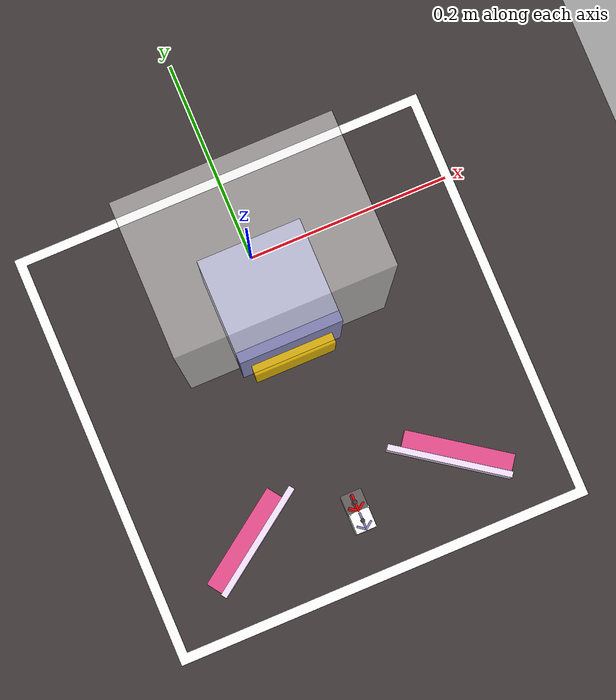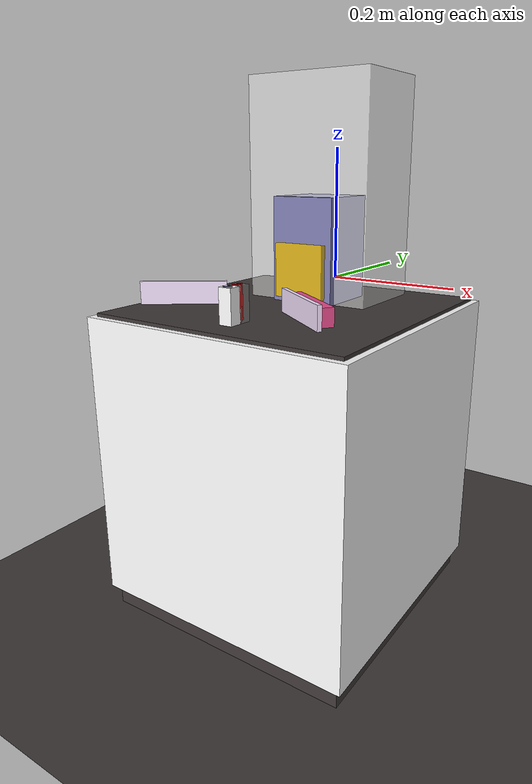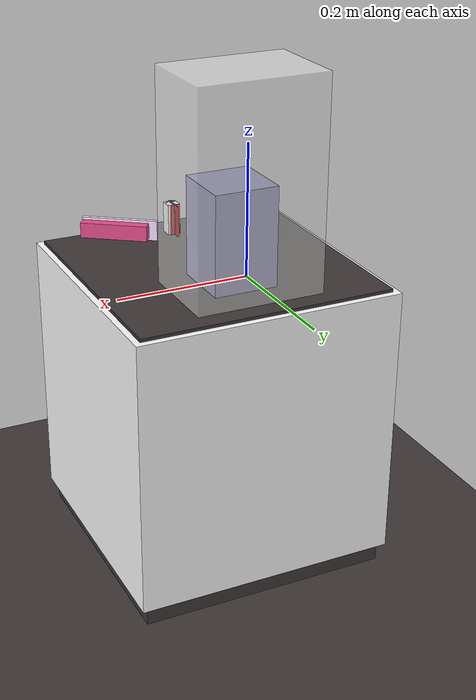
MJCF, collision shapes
<?xml version="1.0" encoding="utf-8"?>
<mujoco>

    <compiler angle="radian"
        meshdir="./simple_assets"
        balanceinertia="true"
        discardvisual="false"
        autolimits="true"></compiler>
    <option solver="PGS" impratio="0.5" cone="elliptic" tolerance="1e-7" noslip_iterations="10000">
        <flag warmstart="enable"></flag>
    </option>

    <include file="shared.xml"></include>

    <worldbody>
        <geom name="floor" type="plane" pos="0 0 -0.5" rgba="0.25 0.22 0.22 1" size="2 2 0.125" friction="0" group="2"></geom>
        <body name="floor" pos="0 0 -0.5"></body>
        <geom name="table" type="box" size=".2 .2 0.25" pos="0 -0.12 -0.275" contype="6" conaffinity="5" group="2" density="0" rgba="0.25 0.22 0.22 1" solimp="0.95 0.99 0.001" solref="0.00001 1" friction = "0.01" priority="1"></geom>
        <geom name="tableWhite" type="box" size=".21 .21 0.22" pos="0 -0.12 -0.25" rgba="1.5 1.5 1.5 0.9" group="2"></geom>
        <geom name="case" type="box" size="0.1 0.07 0.2" pos="0 -0.02 0.1" contype="0" conaffinity="0" group="2" density="0" rgba="2.56 2.56 2.56 0.5" mass="1"></geom>

        <include file="gripper.xml"></include>
        <include file="cube_1cm.xml"></include>

        <light directional="true" diffuse="0.3 0.3 0.3" specular="0.3 0.3 0.3" castshadow="true" pos="0.1 0.1 0.1" dir="0.2 0.1 -0.1" ></light>
    </worldbody>
</mujoco>

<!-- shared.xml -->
<mujoco>
    <size njmax="500" nconmax="100" nuser_jnt="1" nuser_site="1" nuser_sensor="1" nuser_actuator="5" nstack="600000"></size>

    <visual>
        <map fogstart="3" fogend="5" force="0.1"></map>
        <quality shadowsize="4096"></quality>
    </visual>

    <asset>
        <mesh name="base_link" file="base_link.STL"/>
        <mesh name="left_finger" file="left_finger.STL"/>
        <mesh name="left_insert" file="left_insert.STL"/>
        <mesh name="right_finger" file="right_finger.STL"/>
        <mesh name="right_insert" file="right_insert.STL"/>
        <mesh name="octagon" file="octagon.STL" scale="0.001 0.001 0.001"/>
    </asset>

    <contact>
        <exclude body1="base_link" body2="left_finger"></exclude>
        <exclude body1="base_link" body2="right_finger"></exclude>
        <exclude body1="left_finger" body2="left_insert"></exclude>
        <exclude body1="right_finger" body2="right_insert"></exclude>
    </contact>

    <default>
        <default class="visual">
            <geom type="mesh" solref=".004 1" contype="0" conaffinity="0" group="0"></geom>
        </default>
        <default class="collision">
            <geom type="mesh" group="1"></geom>
            <default class="left_insert_box">
                <geom mass="0" type="box" pos="0.012 -0.051365 0.0113936" size="0.0121 0.053 0.010375" friction="0.1" solimp="0.95 0.99 0.001" solref="0.004 1" priority="1" rgba="0.9 0.3 0.55 1" contype="1" conaffinity="2"></geom>
            </default>
            <default class="right_insert_box">
                <geom mass="0" type="box" pos="0.012 -0.051365 -0.0113936" size="0.0121 0.053 0.010375" friction="0.1" solimp="0.95 0.99 0.001" solref="0.004 1" priority="1" rgba="0.9 0.3 0.55 1" contype="1" conaffinity="2"></geom>
            </default>
            <default class="left_finger_box">
                <geom type="box" size = "0.016 0.06 0.003" contype="4" conaffinity="2" group="0" density="0" rgba="0.96 0.89 1.07 0.7" solimp="0.95 0.99 0.001" solref="0.00001 1" friction = "1" pos="-0.00218 0.087 0.019" priority="1"></geom>
            </default>
            <default class="right_finger_box">
                <geom type="box" size = "0.016 0.06 0.003" contype="4" conaffinity="2" group="0" density="0" rgba="0.96 0.89 1.07 0.7" solimp="0.95 0.99 0.001" solref="0.00001 1" friction = "1" pos="-0.00218 0.087 -0.019" priority="1"></geom>
            </default>
            <default class="object">
                <geom condim="4" contype="6" conaffinity="5" group="1" friction="0.5" priority="1" solimp="0.95 0.99 0.001" solref="0.00001 1"></geom>
            </default>
        </default>
        <default class="xm430Position">
            <joint damping="4.99979599" armature="0.39951026" frictionloss="0.03"/>
<!--            Iter:26, accepted:True, prms:[ 8.42506598  1.53619032 30.          0.1425522 ], loss:42910.40454254485
Multiple Trajectories-->
        </default>
        <default class="xm430Torque">
            <joint damping="5.67185526e-02" armature="3.55878361e-03" frictionloss="4.86429385e-07"/>
            <!--minimum loss:     370.75205951925, 0.3 torque-->
        </default>
        <default class="xl320">
            <joint damping="100000" armature="0.045" frictionloss="1" stiffness="0"/>
<!--        springdamper="100 1" damping="10000" armature="0.045" frictionloss="1" stiffness="0"    -->
        </default>
    </default>

    <sensor>
        <jointpos name="joint:p_left" joint="joint:left"></jointpos>
        <jointpos name="joint:p_right" joint="joint:right"></jointpos>
        <jointpos name="joint:p_leftInsert" joint="joint:leftInsert"></jointpos>
        <jointpos name="joint:p_rightInsert" joint="joint:rightInsert"></jointpos>
        <jointpos name="joint:p_stand" joint="joint:stand"></jointpos>
    </sensor>

<!--    Torque: [3.98617919, 0.63838835, 0.]-->
<!--    Position: [4.99979599, 0.39951026, 12.87708353, 0.03]-->

    <actuator>
        <position name="joint:A_left" joint="joint:left" ctrlrange="0 1.8807" kp="30" forcerange="-5 5" gear="1"></position>
        <motor name="joint:AT_right" joint="joint:right" ctrlrange="0 1" forcerange="-5 5"></motor>
        <position name="joint:A_leftInsert" joint="joint:leftInsert" ctrlrange="0 0.34" gear="100" kp="20"></position>
        <position name="joint:A_rightInsert" joint="joint:rightInsert" ctrlrange="0 0.34" gear="100" kp="20"></position>
        <position name="joint:A_stand" joint="joint:stand" ctrlrange="0 3" kp="10"></position>
    </actuator>
</mujoco>

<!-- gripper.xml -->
<mujoco>
    <body name="stand" pos="0 -0.02 0">
        <geom type="box" contype="0" pos="0 -0.03 -0.02" size="0.05 0.05 0.15" conaffinity="0" group="2" density="0" rgba="0.5 0.5 0.7 1" mass="1"></geom>
        <geom type="box" contype="0" pos="0 -0.04 0.023" size="0.04 0.05 0.04" conaffinity="0" group="2" density="0" rgba="2.55 0.80 0 0.8"></geom>
        <geom type="box" contype="0" pos="0 -0.02 0.023" size="0.02 0.05 0.02" conaffinity="0" group="2" density="0" rgba="2.55 0.80 0 0.8"></geom>
        <joint name="joint:stand" type="slide" pos="0 0 0" axis="0 0 1" limited="true" range="0 0.1" damping="100" armature="0.0001"></joint>
        <body name="base_link" pos="0 0 0">
            <geom type="mesh" contype="0" conaffinity="0" group="0" density="0" rgba="1.07 0.84 1.23 1" mesh="base_link"></geom>

            <body name="left_finger" pos="0.037012 -0.1645 0.002" quat="-0.3251685 -0.6279056 -0.3251685 0.6279056">
                <inertial pos="-0.0070962 0.07599 -0.00064418" quat="-0.5 -0.5 0.5 -0.5" mass="0.55" diaginertia="5e-05 5e-05 1e-05"/>
                <joint name="joint:left" class="xm430" type="hinge" axis="1 0 0" range="0 2.0944"></joint>
                <geom class="visual" type="mesh" rgba="0.5 0.5 0.7 0.5" mesh="left_finger" ></geom>
                <geom class="left_finger_box" name="left_finger"></geom>
                <body name="left_insert" pos="-0.014 0.144 -0.0015">
                    <inertial pos="0.012 -0.051365 0.011392" quat="0.5 0.5 -0.5 0.5" mass="0.27" diaginertia="2.72798e-05 2.6941e-05 2.15361e-06"/>
                    <joint name="joint:leftInsert" type="slide" axis="0 0 1" range="-0.0017 0.0017" class="xl320"></joint>
                    <geom class="left_insert_box" name="left_insert" group="3"></geom>
                    <geom class="visual" mesh="left_insert" rgba="1.9 1.9 .4 1"></geom>
                </body>
            </body>

            <body name="right_finger" pos="-0.037488 -0.1645 0.002" quat="-0.3251685 0.6279056 -0.3251685 -0.6279056">
                <inertial pos="0.0070962 0.07599 -0.00064418" quat="0.5 0.5 -0.5 0.5" mass="0.55" diaginertia="5e-05 5e-05 1e-05"/>
                <joint name="joint:right" class="xm430" type="hinge" axis="-1 0 0" range="0 2.0944"></joint>
                <geom class="visual" type="mesh" rgba="0.5 0.5 0.7 0.5" mesh="right_finger"></geom>
                <geom class="right_finger_box" name="right_finger"></geom>
                <body name="right_insert" pos="-0.014 0.144 0.0015">
                    <inertial pos="0.012 -0.051365 0.02879" quat="0.5 0.5 -0.5 0.5" mass="0.27" diaginertia="2.72798e-05 2.6941e-05 2.15361e-06"/>
                    <joint name="joint:rightInsert" type="slide" axis="0 0 -1" range="-0.0017 0.0017" class="xl320"></joint>
                    <geom class="right_insert_box" name="right_insert" group="3"></geom>
                    <geom class="visual" mesh="right_insert" rgba="1.9 1.9 .4 1"></geom>
                </body>
            </body>

        </body>
    </body>
</mujoco>

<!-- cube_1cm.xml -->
<mujoco>
    <body name="object" pos="0 -0.27 0">
        <joint name="joint:object" type="free" damping="0.01"></joint>
        <geom name="object" type="box" size =".01 .01 .025" rgba="1.5 1.5 1.5 1" condim="4" contype="6" conaffinity="5" friction="1" mass="0.02" group="1" pos="0 0 0"></geom>
        <site name="object:center" pos="0 0 0" rgba="1 0 0 0" size="0.005 0.005 0.005" group="1"></site>
        <site name="object:corner1" pos="0.01 0.01 0.025" rgba="1 1 1 1" size="0.001 0.001 0.001" group="1"></site>
        <site name="object:corner2" pos="0.01 -0.01 0.025" rgba="1 1 0 0" size="0.001 0.001 0.001" group="1"></site>
        <site name="object:corner3" pos="-0.01 -0.01 0.025" rgba="1 0 0 0" size="0.001 0.001 0.001" group="1"></site>
        <site name="object:corner4" pos="-0.01 0.01 0.025" rgba="0 1 0 0" size="0.001 0.001 0.001" group="1"></site>
        <body name="arrow_marker" pos="0 0 0.001">
            <geom name="object:center1" type="cylinder" pos="0 0 0.001" size="0.002 .025" contype="0" conaffinity="0" rgba="0.25 0.22 0.22 1" group="1"></geom>
            <geom name="arrow" type="box" size =".001 .008 .025" rgba="0.5 0.5 0.7 1" contype="0" conaffinity="0" group="1"></geom>
            <geom name="arrow2" type="box" pos="-0.0034 -0.006 0" quat="1 0 0 0.5" size=".001 .005 .025" rgba="0.5 0.5 0.7 1" contype="0" conaffinity="0" group="1"></geom>
            <geom name="arrow3" type="box" pos="0.0034 -0.006 0" quat="1 0 0 -0.5" size=".001 .005 .025" rgba="0.5 0.5 0.7 1" contype="0" conaffinity="0" group="1"></geom>
        </body>
    </body>

    <body name="target" pos="0 -0.251365 0">
        <joint name="joint:target" type="free" damping="0.01"></joint>
        <geom name="target" type="box" size=".01 .01 .025" rgba="1.5 1.5 1.5 0.2" group="1" condim="4" contype="0" conaffinity="0" pos="0 0 0"></geom>
        <site name="target:center" pos="0 0 0" rgba="1 0 0 0" size="0.005 0.005 0.005" group="1"></site>
        <site name="target:corner1" pos="0.01 0.01 0.025" rgba="1 1 1 0" size="0.001 0.001 0.001" group="1"></site>
        <site name="target:corner2" pos="0.01 -0.01 0.025" rgba="1 1 0 0" size="0.001 0.001 0.001" group="1"></site>
        <site name="target:corner3" pos="-0.01 -0.01 0.025" rgba="1 0 0 0" size="0.001 0.001 0.001" group="1"></site>
        <site name="target:corner4" pos="-0.01 0.01 0.025" rgba="0 1 0 0" size="0.001 0.001 0.001" group="1"></site>
        <body name="target_arrow_marker" pos="0 0 0.001">
            <geom name="target:center1" type="cylinder" pos="0 0 0.001" size="0.002 .025" contype="0" conaffinity="0" rgba="0.25 0.22 0.22 1" group="1"></geom>
            <geom name="target_arrow" type="box" size =".001 .008 .025" rgba="1 0 0 1" contype="0" conaffinity="0" group="1"></geom>
            <geom name="target_arrow2" type="box" pos="-0.0034 -0.006 0" quat="1 0 0 0.5" size=".001 .005 .025" rgba="1 0 0 1" contype="0" conaffinity="0" group="1"></geom>
            <geom name="target_arrow3" type="box" pos="0.0034 -0.006 0" quat="1 0 0 -0.5" size=".001 .005 .025" rgba="1 0 0 1" contype="0" conaffinity="0" group="1"></geom>
        </body>
    </body>
</mujoco>
